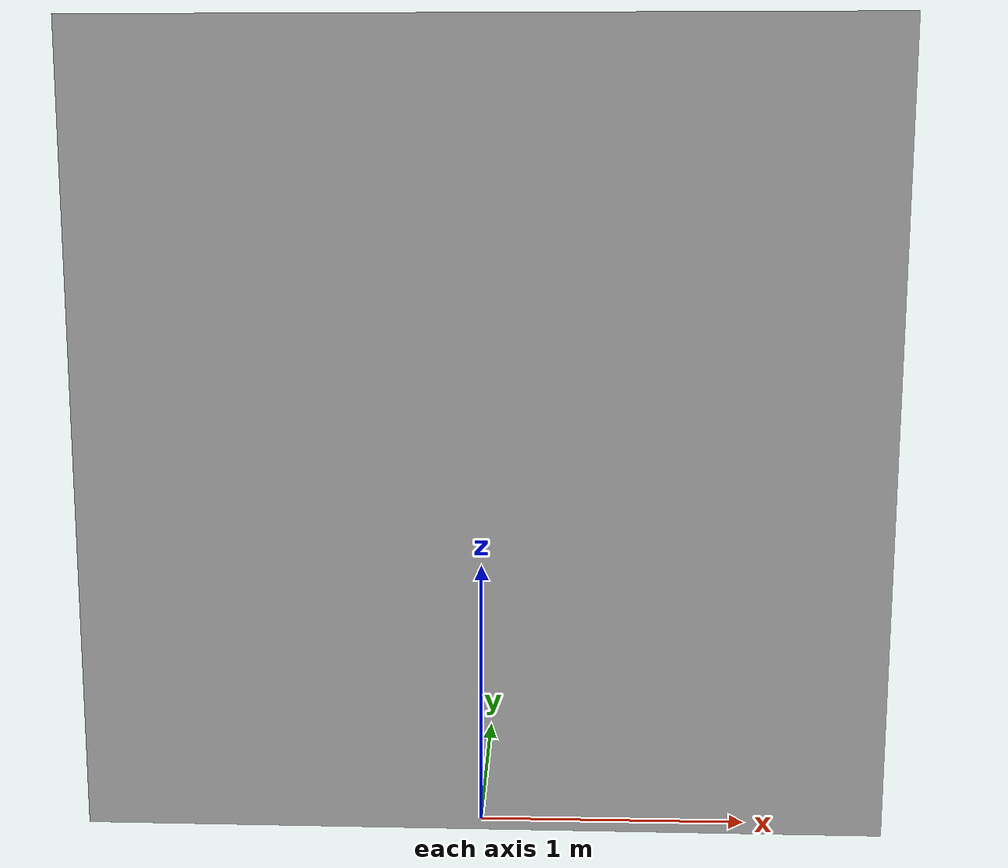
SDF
<?xml version="1.0" ?>
<sdf version="1.5">
  <model name="AIGC2_wall_3m">
    <static>true</static>
    <link name="link">
      <pose>0 0 1.5 0 0 0</pose>
      <collision name="collision">
        <geometry>
          <box>
            <size>3.0 0.2 3.0</size>
          </box>
        </geometry>
      </collision>
      <visual name="visual">
        <cast_shadows>false</cast_shadows>
        <geometry>
          <box>
            <size>3.0 0.2 3.0</size>
          </box>
        </geometry>
        <material>
          <script>
            <uri>model://AIGC2_wall_3m/materials/scripts</uri>
            <uri>model://AIGC2_wall_3m/materials/textures</uri>
            <name>vrc/grey_wall</name>
          </script>
        </material>
      </visual>
    </link>
  </model>
</sdf>
